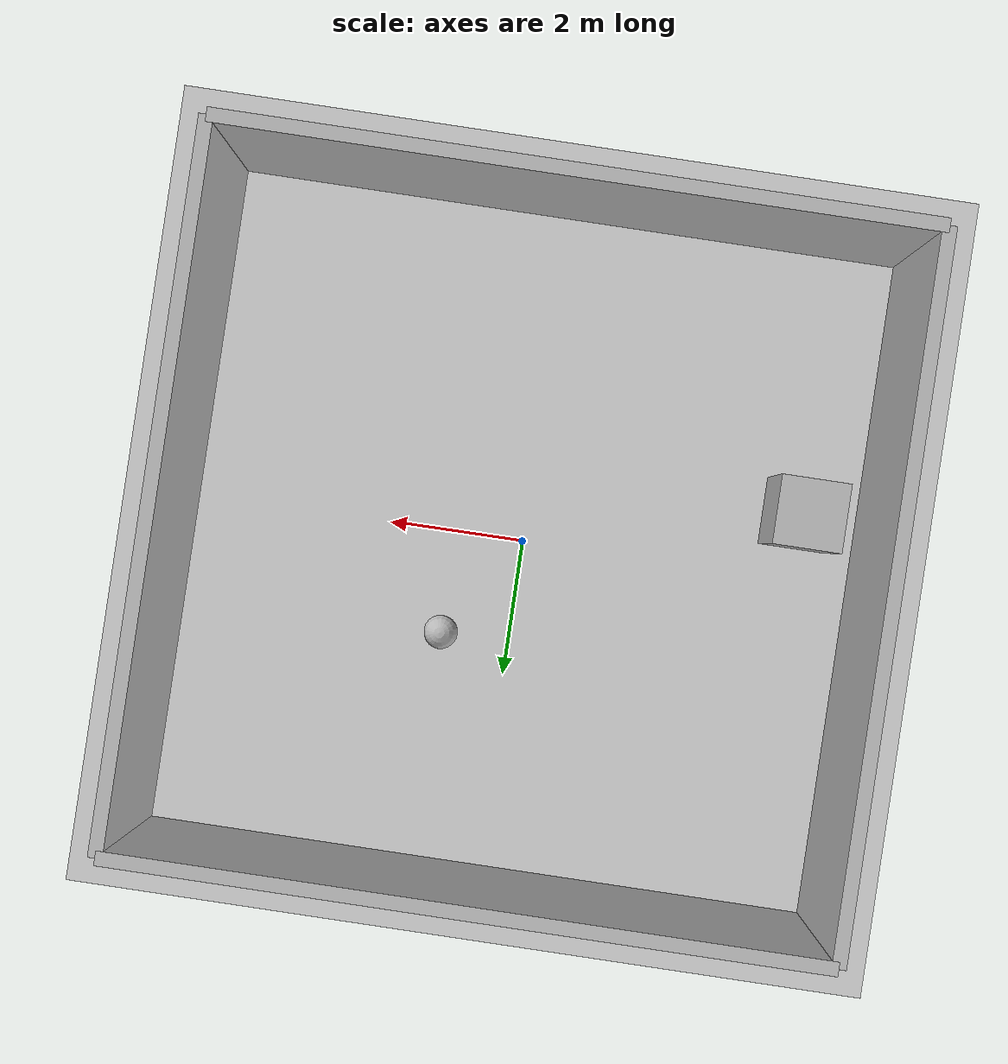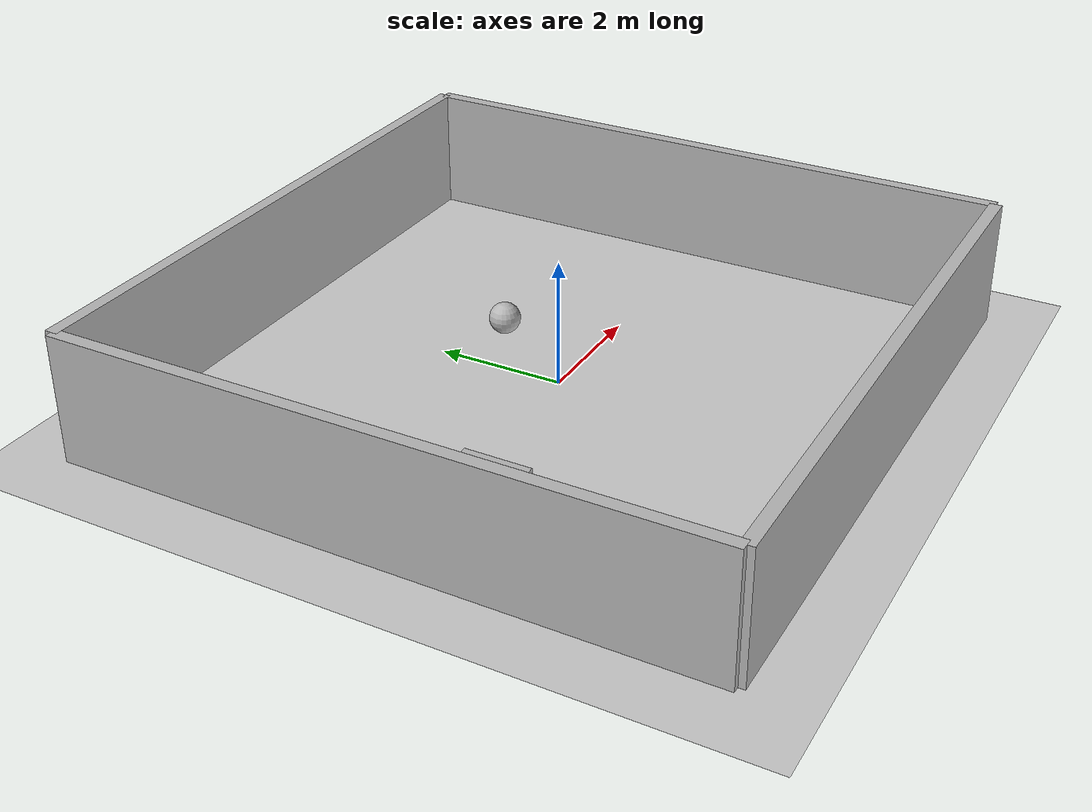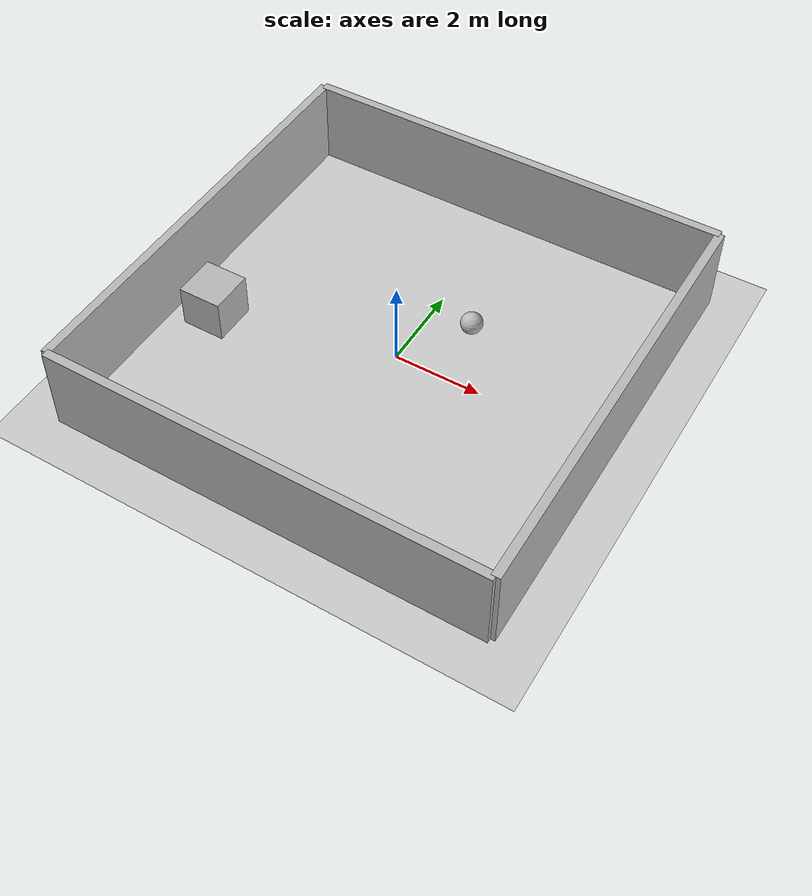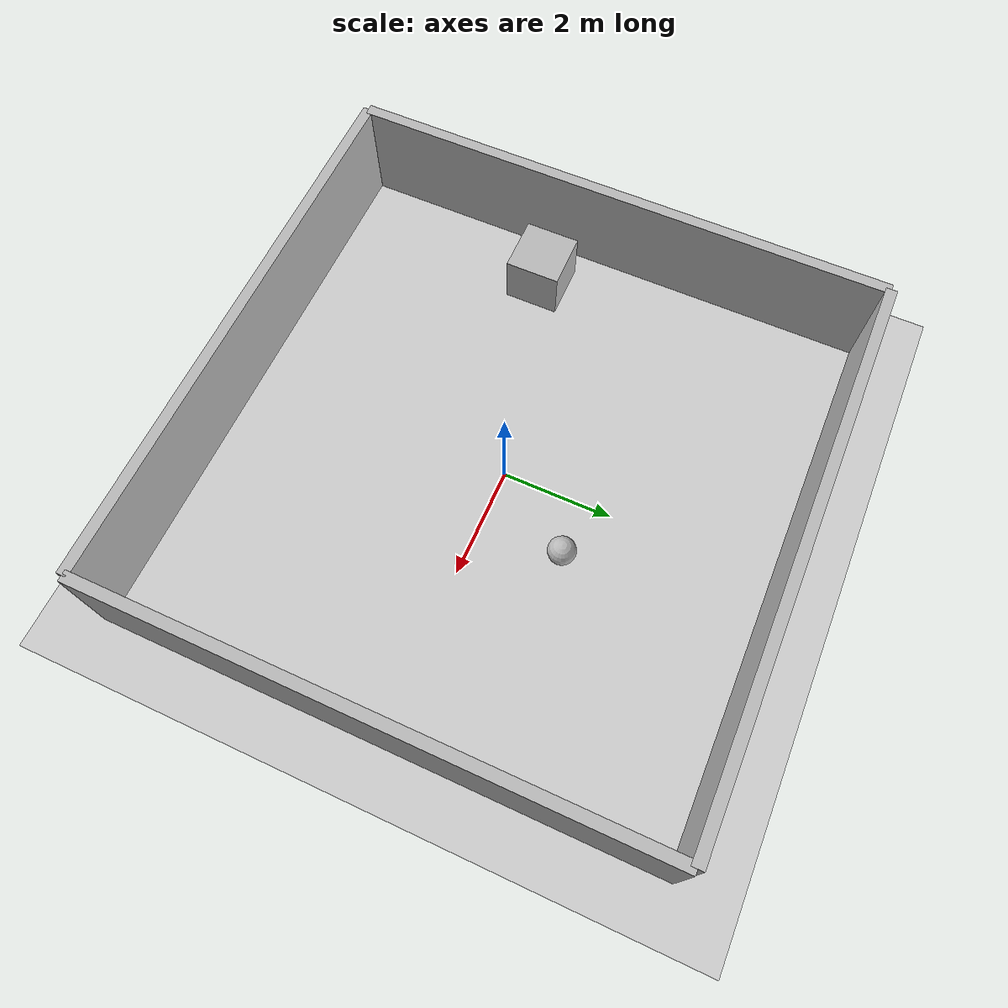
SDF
<?xml version="1.0" ?>
<sdf version="1.8">
  <world name="indoor_world">

    <!-- Physics -->

  <!-- Physics engine system plugin -->
    <plugin
      filename="libignition-gazebo6-physics-system.so"
      name="ignition::gazebo::systems::Physics"/>

    <!-- Scene broadcaster (needed for GUI to render models) -->
    <plugin
      filename="libignition-gazebo6-scene-broadcaster-system.so"
      name="ignition::gazebo::systems::SceneBroadcaster"/>

    <!-- User commands (allows GUI drag, delete, spawn, etc.) -->
    <plugin
      filename="libignition-gazebo6-user-commands-system.so"
      name="ignition::gazebo::systems::UserCommands"/>

    <!-- Sensor system plugin (required for cameras and other sensors) -->
    <plugin
      filename="libignition-gazebo6-sensors-system.so"
      name="ignition::gazebo::systems::Sensors">
      <render_engine>ogre2</render_engine>
    </plugin>

    <!-- IMU system plugin -->
    <plugin
      filename="libignition-gazebo6-imu-system.so"
      name="ignition::gazebo::systems::Imu">
      <render_engine>ogre2</render_engine>
    </plugin>

    <!-- Lighting -->
    <include>
      <uri>https://fuel.gazebosim.org/1.0/OpenRobotics/models/Sun</uri>
    </include>

    <!-- Ground -->
    <include>
      <uri>https://fuel.gazebosim.org/1.0/OpenRobotics/models/Ground Plane</uri>
    </include>

    <!-- Walls (simple room) -->

    <!-- Wall 1 -->
    <model name="wall_north">
      <static>true</static>
      <pose>0 5 1 0 0 0</pose>
      <link name="link">
        <collision name="collision">
          <geometry>
            <box><size>10 0.2 2</size></box>
          </geometry>
        </collision>
        <visual name="visual">
          <geometry>
            <box><size>10 0.2 2</size></box>
          </geometry>
        </visual>
      </link>
    </model>

    <!-- Wall 2 -->
    <model name="wall_south">
      <static>true</static>
      <pose>0 -5 1 0 0 0</pose>
      <link name="link">
        <collision name="collision">
          <geometry>
            <box><size>10 0.2 2</size></box>
          </geometry>
        </collision>
        <visual name="visual">
          <geometry>
            <box><size>10 0.2 2</size></box>
          </geometry>
        </visual>
      </link>
    </model>

    <!-- Wall 3 -->
    <model name="wall_east">
      <static>true</static>
      <pose>5 0 1 0 0 0</pose>
      <link name="link">
        <collision name="collision">
          <geometry>
            <box><size>0.2 10 2</size></box>
          </geometry>
        </collision>
        <visual name="visual">
          <geometry>
            <box><size>0.2 10 2</size></box>
          </geometry>
        </visual>
      </link>
    </model>

    <!-- Wall 4 -->
    <model name="wall_west">
      <static>true</static>
      <pose>-5 0 1 0 0 0</pose>
      <link name="link">
        <collision name="collision">
          <geometry>
            <box><size>0.2 10 2</size></box>
          </geometry>
        </collision>
        <visual name="visual">
          <geometry>
            <box><size>0.2 10 2</size></box>
          </geometry>
        </visual>
      </link>
    </model>

    <!-- Internal obstacles -->

    <model name="box_obstacle_2">
      <static>true</static>
      <pose>-4 -1 0.5 0 0 0</pose>
      <link name="link">
        <collision name="collision">
          <geometry>
            <box><size>1 1 1</size></box>
          </geometry>
        </collision>
        <visual name="visual">
          <geometry>
            <box><size>1 1 1</size></box>
          </geometry>
        </visual>
      </link>
    </model>
<model name="sphere_obstacle_small">
  <static>true</static>
  <pose>1 1.5 0.25 0 0 0</pose>
  <link name="link">
    <collision name="collision">
      <geometry>
        <sphere>
          <radius>0.25</radius>
        </sphere>
      </geometry>
    </collision>
    <visual name="visual">
      <geometry>
        <sphere>
          <radius>0.25</radius>
        </sphere>
      </geometry>
    </visual>
  </link>
</model>

  </world>
</sdf>
